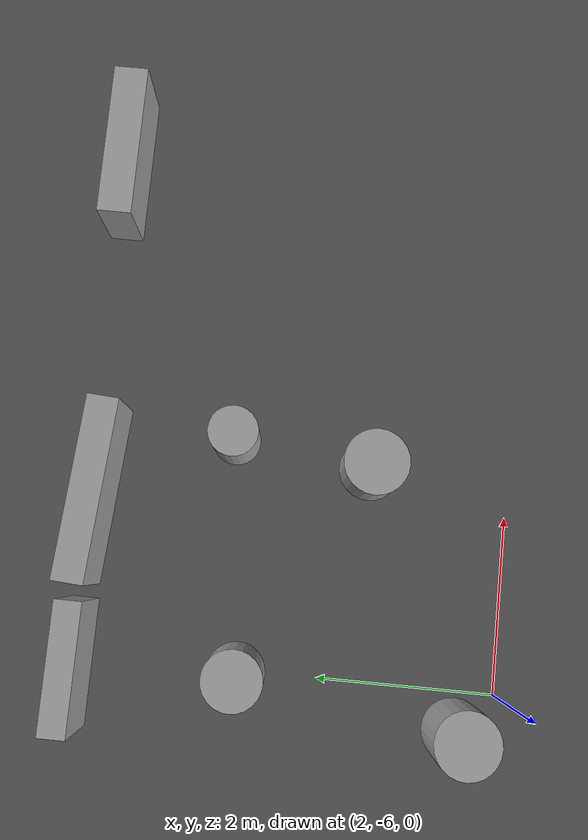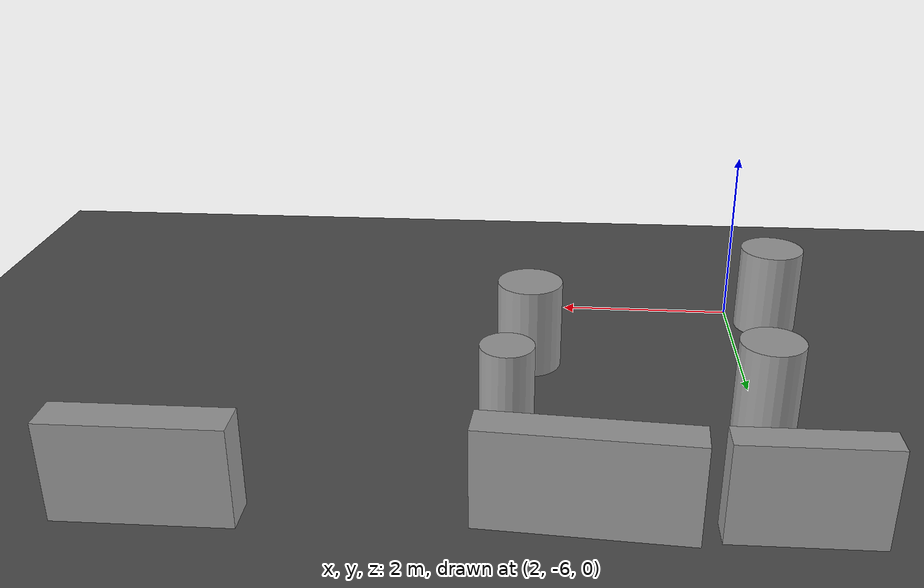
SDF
<sdf version="1.7">
 <world name="default">
  <light name="sun" type="directional">
   <pose>0 0 10 0 -0 0</pose>
   <diffuse>0.8 0.8 0.8 1</diffuse>
   <specular>0.2 0.2 0.2 1</specular>
   <attenuation>
    <range>1000</range>
    <constant>0.9</constant>
    <linear>0.01</linear>
    <quadratic>0.001</quadratic>
   </attenuation>
   <direction>-0.5 0.1 -0.9</direction>
   <spot><inner_angle>0</inner_angle><outer_angle>0</outer_angle><falloff>0</falloff></spot>
  </light>
  <model name="ground_plane">
   <static>1</static>
   <link name="link">
    <collision name="collision">
     <geometry><plane><normal>0 0 1</normal><size>100 100</size></plane></geometry>
     <surface>
      <contact><collide_bitmask>65535</collide_bitmask></contact>
      <friction><ode><mu>100</mu><mu2>50</mu2></ode></friction>
     </surface>
    </collision>
    <visual name="visual">
     <cast_shadows>0</cast_shadows>
     <geometry><plane><normal>0 0 1</normal><size>100 100</size></plane></geometry>
     <material>
      <script><uri>file://media/materials/scripts/gazebo.material</uri><name>Gazebo/Grey</name></script>
     </material>
    </visual>
   </link>
  </model>
  <model name="asphalt_plane">
   <pose>0.007531 -0.000339 0 0 -0 0</pose>
   <static>1</static>
   <link name="link">
    <collision name="collision"><geometry><box><size>200 200 0.1</size></box></geometry></collision>
    <visual name="visual">
     <cast_shadows>0</cast_shadows>
     <geometry><box><size>200 200 0.1</size></box></geometry>
     <material>
      <script>
       <uri>model://asphalt_plane/materials/scripts</uri>
       <uri>model://asphalt_plane/materials/textures</uri>
       <name>vrc/asphalt</name>
      </script>
     </material>
    </visual>
   </link>
  </model>
  <physics name="default_physics" default="0" type="ode">
   <ode>
    <solver>
     <type>quick</type>
     <iters>10</iters>
     <sor>1.3</sor>
     <use_dynamic_moi_rescaling>0</use_dynamic_moi_rescaling>
    </solver>
    <constraints>
     <cfm>0</cfm>
     <erp>0.2</erp>
     <contact_max_correcting_vel>100</contact_max_correcting_vel>
     <contact_surface_layer>0.001</contact_surface_layer>
    </constraints>
   </ode>
   <max_step_size>0.004</max_step_size>
   <real_time_factor>1</real_time_factor>
   <real_time_update_rate>250</real_time_update_rate>
  </physics>
  <gravity>0 0 -9.8066</gravity>
  <magnetic_field>6e-06 2.3e-05 -4.2e-05</magnetic_field>
  <atmosphere type="adiabatic"/>
  <scene><ambient>0.4 0.4 0.4 1</ambient><background>0.7 0.7 0.7 1</background><shadows>1</shadows></scene>
  <spherical_coordinates>
   <surface_model>EARTH_WGS84</surface_model>
   <latitude_deg>0</latitude_deg>
   <longitude_deg>0</longitude_deg>
   <elevation>0</elevation>
   <heading_deg>0</heading_deg>
  </spherical_coordinates>
  <model name="unit_cylinder">
   <pose>1.99347 -3.09179 0.549903 -3.2e-05 5.1e-05 0.000132</pose>
   <link name="link">
    <inertial>
     <mass>1</mass>
     <inertia><ixx>0.145833</ixx><ixy>0</ixy><ixz>0</ixz><iyy>0.145833</iyy><iyz>0</iyz><izz>0.125</izz></inertia>
    </inertial>
    <collision name="collision">
     <geometry><cylinder><radius>0.328723</radius><length>1</length></cylinder></geometry>
    </collision>
    <visual name="visual">
     <geometry><cylinder><radius>0.328723</radius><length>1</length></cylinder></geometry>
     <material>
      <script><name>Gazebo/Grey</name><uri>file://media/materials/scripts/gazebo.material</uri></script>
     </material>
    </visual>
   </link>
  </model>
  <model name="unit_cylinder_0">
   <pose>1.58367 -5.57269 0.549908 -4.6e-05 5.2e-05 -0.000426</pose>
   <link name="link">
    <inertial>
     <mass>1</mass>
     <inertia><ixx>0.145833</ixx><ixy>0</ixy><ixz>0</ixz><iyy>0.145833</iyy><iyz>0</iyz><izz>0.125</izz></inertia>
    </inertial>
    <collision name="collision">
     <geometry><cylinder><radius>0.359357</radius><length>1</length></cylinder></geometry>
    </collision>
    <visual name="visual">
     <geometry><cylinder><radius>0.359357</radius><length>1</length></cylinder></geometry>
     <material>
      <script><name>Gazebo/Grey</name><uri>file://media/materials/scripts/gazebo.material</uri></script>
     </material>
    </visual>
   </link>
  </model>
  <model name="unit_cylinder_1">
   <pose>4.41105 -4.40092 0.549905 -2.9e-05 5.5e-05 0.000226</pose>
   <link name="link">
    <inertial>
     <mass>1</mass>
     <inertia><ixx>0.145833</ixx><ixy>0</ixy><ixz>0</ixz><iyy>0.145833</iyy><iyz>0</iyz><izz>0.125</izz></inertia>
    </inertial>
    <collision name="collision">
     <geometry><cylinder><radius>0.357189</radius><length>1</length></cylinder></geometry>
    </collision>
    <visual name="visual">
     <geometry><cylinder><radius>0.357189</radius><length>1</length></cylinder></geometry>
     <material>
      <script><name>Gazebo/Grey</name><uri>file://media/materials/scripts/gazebo.material</uri></script>
     </material>
    </visual>
   </link>
  </model>
  <model name="unit_box">
   <pose>3.8325 -1.33857 0.549586 -5.9e-05 0.000424 -0.070956</pose>
   <link name="link">
    <inertial>
     <mass>1</mass>
     <inertia>
      <ixx>0.166667</ixx>
      <ixy>0</ixy>
      <ixz>0</ixz>
      <iyy>0.166667</iyy>
      <iyz>0</iyz>
      <izz>0.166667</izz>
     </inertia>
    </inertial>
    <collision name="collision"><geometry><box><size>2.01646 0.353042 1</size></box></geometry></collision>
    <visual name="visual">
     <geometry><box><size>2.01646 0.353042 1</size></box></geometry>
     <material>
      <script><name>Gazebo/Grey</name><uri>file://media/materials/scripts/gazebo.material</uri></script>
     </material>
    </visual>
   </link>
  </model>
  <model name="unit_box_0">
   <pose>7.73835 -1.27414 0.549884 -4.7e-05 1.1e-05 0.0002</pose>
   <link name="link">
    <inertial>
     <mass>1</mass>
     <inertia>
      <ixx>0.166667</ixx>
      <ixy>0</ixy>
      <ixz>0</ixz>
      <iyy>0.166667</iyy>
      <iyz>0</iyz>
      <izz>0.166667</izz>
     </inertia>
    </inertial>
    <collision name="collision"><geometry><box><size>1.69463 0.383474 1</size></box></geometry></collision>
    <visual name="visual">
     <geometry><box><size>1.69463 0.383474 1</size></box></geometry>
     <material>
      <script><name>Gazebo/Grey</name><uri>file://media/materials/scripts/gazebo.material</uri></script>
     </material>
    </visual>
   </link>
  </model>
  <model name="unit_box_1">
   <pose>1.94614 -1.30648 0.550002 -2e-05 0 8.1e-05</pose>
   <link name="link">
    <inertial>
     <mass>1</mass>
     <inertia>
      <ixx>0.166667</ixx>
      <ixy>0</ixy>
      <ixz>0</ixz>
      <iyy>0.166667</iyy>
      <iyz>0</iyz>
      <izz>0.166667</izz>
     </inertia>
    </inertial>
    <collision name="collision"><geometry><box><size>1.41382 0.302595 1</size></box></geometry></collision>
    <visual name="visual">
     <geometry><box><size>1.41382 0.302595 1</size></box></geometry>
     <material>
      <script><name>Gazebo/Grey</name><uri>file://media/materials/scripts/gazebo.material</uri></script>
     </material>
    </visual>
   </link>
  </model>
  <model name="unit_cylinder_2">
   <pose>4.59349 -2.83824 0.549852 5e-06 9e-06 -0.000229</pose>
   <link name="link">
    <inertial>
     <mass>1</mass>
     <inertia><ixx>0.145833</ixx><ixy>0</ixy><ixz>0</ixz><iyy>0.145833</iyy><iyz>0</iyz><izz>0.125</izz></inertia>
    </inertial>
    <collision name="collision">
     <geometry><cylinder><radius>0.276015</radius><length>1</length></cylinder></geometry>
    </collision>
    <visual name="visual">
     <geometry><cylinder><radius>0.276015</radius><length>1</length></cylinder></geometry>
     <material>
      <script><name>Gazebo/Grey</name><uri>file://media/materials/scripts/gazebo.material</uri></script>
     </material>
    </visual>
   </link>
  </model>
 </world>
</sdf>
